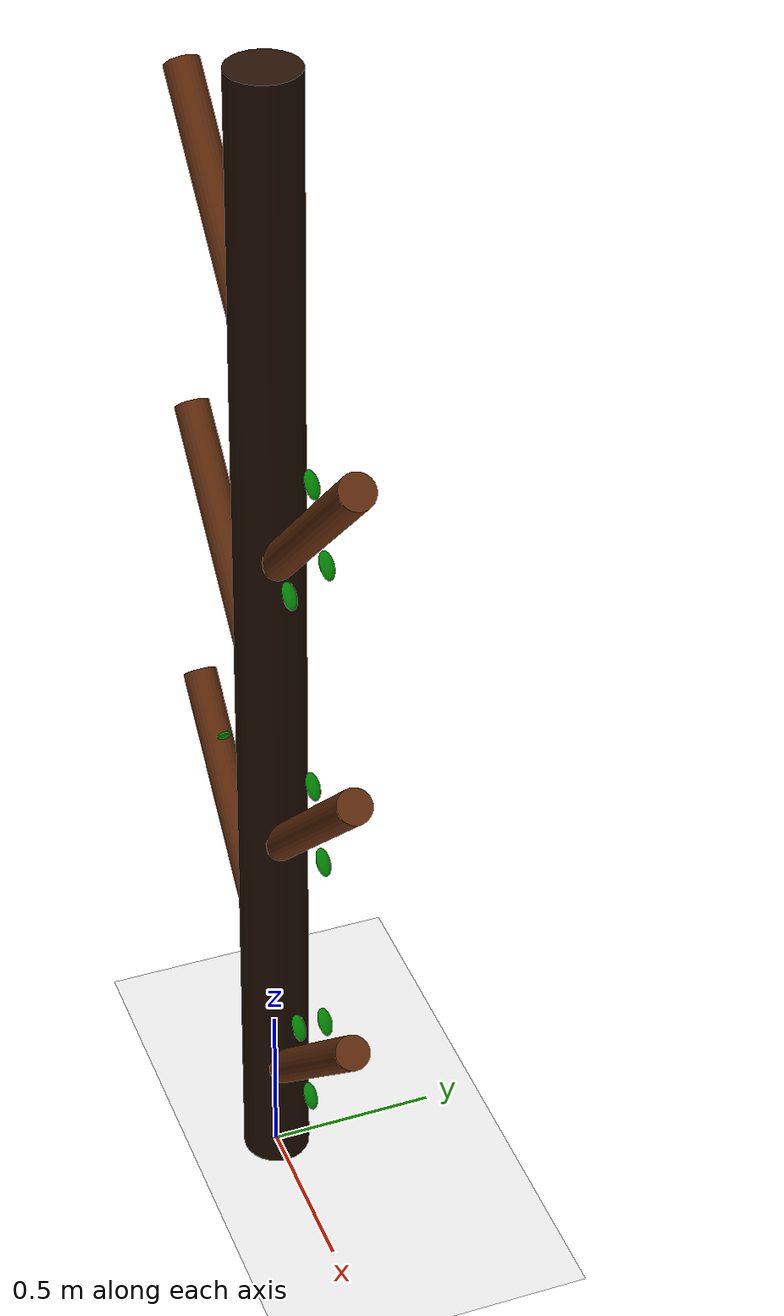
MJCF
<mujoco>
    <worldbody>
        <light diffuse=".5 .5 .5" pos="0 0 3" dir="0 0 -1"/>
        <geom type="plane" size="5 5 0.1" rgba=".9 0.9 0.9 1"/>
        <body name="trunk" pos="0 0 1.8">
            <joint type="free"/>
            <geom type="cylinder" size=".1 1.8" rgba=".15 .07 .02 1" mass="1000"/>
        <body name="leftbranch1" pos="0.3 0 -1.2003143497608804" euler="0 45 0">
            <geom type="cylinder" size=".05 0.5" rgba=".38 .17 .05 1"/>
            <body name="leaf1" pos="-0.1 0 -0.023124047926208757">
                <joint name="leaf1_joint" type="hinge" axis="0 1 0" pos="0 0 0" range="-5 5"/>
                <geom type="ellipsoid" size=".04 .02 .01" rgba="0 .5 0 1"/>
            </body>
            <body name="leaf3" pos="-0.1 0 0.28732781574919414">
                <joint name="leaf3_joint" type="hinge" axis="0 1 0" pos="0 0 0" range="-5 5"/>
                <geom type="ellipsoid" size=".04 .02 .01" rgba="0 .5 0 1"/>
            </body>
            <body name="leaf5" pos="0.1 0 -0.08558878230379202">
                <joint name="leaf5_joint" type="hinge" axis="0 1 0" pos="0 0 0" range="-5 5"/>
                <geom type="ellipsoid" size=".04 .02 .01" rgba="0 .5 0 1"/>
            </body>
        </body>
        <body name="rightbranch1" pos="-0.3 0 -0.8099139990659396" euler="0 -45 0">
            <geom type="cylinder" size=".05 0.5" rgba=".38 .17 .05 1"/>
            <body name="leaf2" pos="0.1 0 0.28509996791640896">
                <joint name="leaf2_joint" type="hinge" axis="0 1 0" pos="0 0 0" range="-5 5"/>
                <geom type="ellipsoid" size=".04 .02 .01" rgba="0 .5 0 1"/>
            </body>
            <body name="leaf4" pos="-0.1 0 -0.18602043923438727">
                <joint name="leaf4_joint" type="hinge" axis="0 1 0" pos="0 0 0" range="-5 5"/>
                <geom type="ellipsoid" size=".04 .02 .01" rgba="0 .5 0 1"/>
            </body>
            <body name="leaf6" pos="-0.1 0 -0.15297657973951942">
                <joint name="leaf6_joint" type="hinge" axis="0 1 0" pos="0 0 0" range="-5 5"/>
                <geom type="ellipsoid" size=".04 .02 .01" rgba="0 .5 0 1"/>
            </body>
        </body>
        <body name="leftbranch2" pos="0.3 0 -0.32540215236453296" euler="0 45 0">
            <geom type="cylinder" size=".05 0.5" rgba=".38 .17 .05 1"/>
            <body name="leaf7" pos="0.1 0 0.0680773858241866">
                <joint name="leaf7_joint" type="hinge" axis="0 1 0" pos="0 0 0" range="-5 5"/>
                <geom type="ellipsoid" size=".04 .02 .01" rgba="0 .5 0 1"/>
            </body>
            <body name="leaf9" pos="-0.1 0 -0.27202357570483915">
                <joint name="leaf9_joint" type="hinge" axis="0 1 0" pos="0 0 0" range="-5 5"/>
                <geom type="ellipsoid" size=".04 .02 .01" rgba="0 .5 0 1"/>
            </body>
            <body name="leaf11" pos="-0.1 0 0.15251763239670502">
                <joint name="leaf11_joint" type="hinge" axis="0 1 0" pos="0 0 0" range="-5 5"/>
                <geom type="ellipsoid" size=".04 .02 .01" rgba="0 .5 0 1"/>
            </body>
        </body>
        <body name="rightbranch2" pos="-0.3 0 0.12596190398396395" euler="0 -45 0">
            <geom type="cylinder" size=".05 0.5" rgba=".38 .17 .05 1"/>
            <body name="leaf8" pos="-0.1 0 -0.2538188763828861">
                <joint name="leaf8_joint" type="hinge" axis="0 1 0" pos="0 0 0" range="-5 5"/>
                <geom type="ellipsoid" size=".04 .02 .01" rgba="0 .5 0 1"/>
            </body>
            <body name="leaf10" pos="-0.1 0 0.027845904839181534">
                <joint name="leaf10_joint" type="hinge" axis="0 1 0" pos="0 0 0" range="-5 5"/>
                <geom type="ellipsoid" size=".04 .02 .01" rgba="0 .5 0 1"/>
            </body>
            <body name="leaf12" pos="-0.1 0 -0.13457656938214463">
                <joint name="leaf12_joint" type="hinge" axis="0 1 0" pos="0 0 0" range="-5 5"/>
                <geom type="ellipsoid" size=".04 .02 .01" rgba="0 .5 0 1"/>
            </body>
        </body>
        <body name="leftbranch3" pos="0.3 0 0.6429613086487849" euler="0 45 0">
            <geom type="cylinder" size=".05 0.5" rgba=".38 .17 .05 1"/>
            <body name="leaf13" pos="-0.1 0 0.14923888586746836">
                <joint name="leaf13_joint" type="hinge" axis="0 1 0" pos="0 0 0" range="-5 5"/>
                <geom type="ellipsoid" size=".04 .02 .01" rgba="0 .5 0 1"/>
            </body>
            <body name="leaf15" pos="0.1 0 -0.2984286446815876">
                <joint name="leaf15_joint" type="hinge" axis="0 1 0" pos="0 0 0" range="-5 5"/>
                <geom type="ellipsoid" size=".04 .02 .01" rgba="0 .5 0 1"/>
            </body>
            <body name="leaf17" pos="0.1 0 0.10269727117425209">
                <joint name="leaf17_joint" type="hinge" axis="0 1 0" pos="0 0 0" range="-5 5"/>
                <geom type="ellipsoid" size=".04 .02 .01" rgba="0 .5 0 1"/>
            </body>
        </body>
        <body name="rightbranch3" pos="-0.3 0 1.1653384963759148" euler="0 -45 0">
            <geom type="cylinder" size=".05 0.5" rgba=".38 .17 .05 1"/>
            <body name="leaf14" pos="-0.1 0 -0.20180156016716694">
                <joint name="leaf14_joint" type="hinge" axis="0 1 0" pos="0 0 0" range="-5 5"/>
                <geom type="ellipsoid" size=".04 .02 .01" rgba="0 .5 0 1"/>
            </body>
            <body name="leaf16" pos="-0.1 0 0.22735534053547374">
                <joint name="leaf16_joint" type="hinge" axis="0 1 0" pos="0 0 0" range="-5 5"/>
                <geom type="ellipsoid" size=".04 .02 .01" rgba="0 .5 0 1"/>
            </body>
            <body name="leaf18" pos="0.1 0 -0.0543120349517244">
                <joint name="leaf18_joint" type="hinge" axis="0 1 0" pos="0 0 0" range="-5 5"/>
                <geom type="ellipsoid" size=".04 .02 .01" rgba="0 .5 0 1"/>
            </body>
        </body>
        </body>
    </worldbody>
    <actuator>
        <motor name="leaf1_motor" joint="leaf1_joint" gear="0.02"/>
        <motor name="leaf2_motor" joint="leaf2_joint" gear="0.02"/>
        <motor name="leaf3_motor" joint="leaf3_joint" gear="0.02"/>
        <motor name="leaf4_motor" joint="leaf4_joint" gear="0.02"/>
        <motor name="leaf5_motor" joint="leaf5_joint" gear="0.02"/>
        <motor name="leaf6_motor" joint="leaf6_joint" gear="0.02"/>
        <motor name="leaf7_motor" joint="leaf7_joint" gear="0.02"/>
        <motor name="leaf8_motor" joint="leaf8_joint" gear="0.02"/>
        <motor name="leaf9_motor" joint="leaf9_joint" gear="0.02"/>
        <motor name="leaf10_motor" joint="leaf10_joint" gear="0.02"/>
        <motor name="leaf11_motor" joint="leaf11_joint" gear="0.02"/>
        <motor name="leaf12_motor" joint="leaf12_joint" gear="0.02"/>
        <motor name="leaf13_motor" joint="leaf13_joint" gear="0.02"/>
        <motor name="leaf14_motor" joint="leaf14_joint" gear="0.02"/>
        <motor name="leaf15_motor" joint="leaf15_joint" gear="0.02"/>
        <motor name="leaf16_motor" joint="leaf16_joint" gear="0.02"/>
        <motor name="leaf17_motor" joint="leaf17_joint" gear="0.02"/>
        <motor name="leaf18_motor" joint="leaf18_joint" gear="0.02"/>
    </actuator>
</mujoco>
